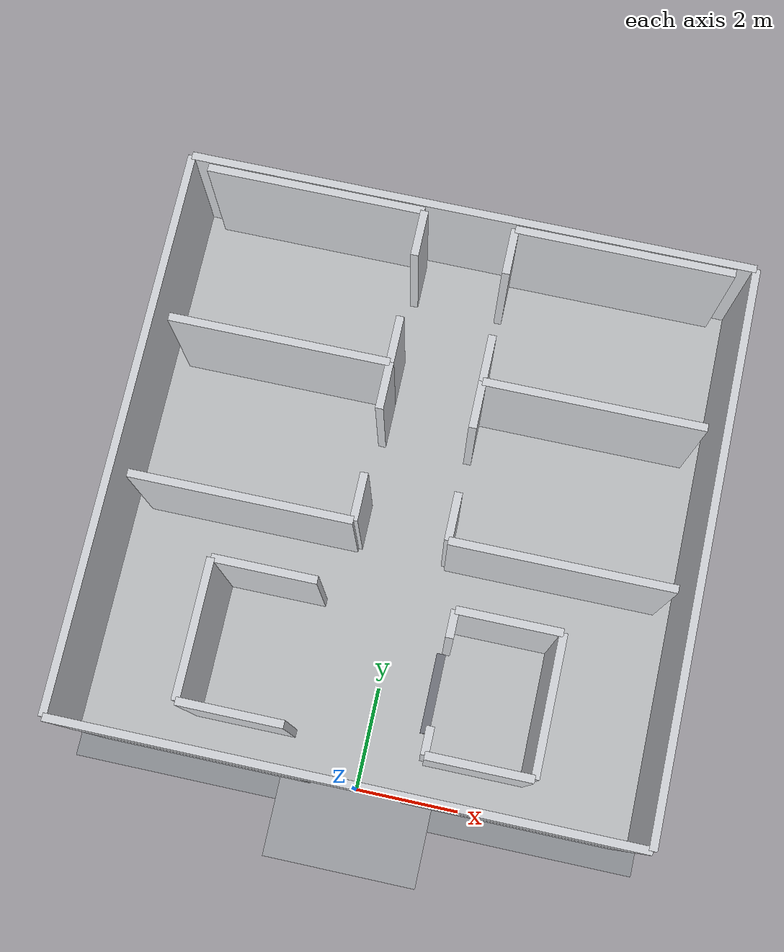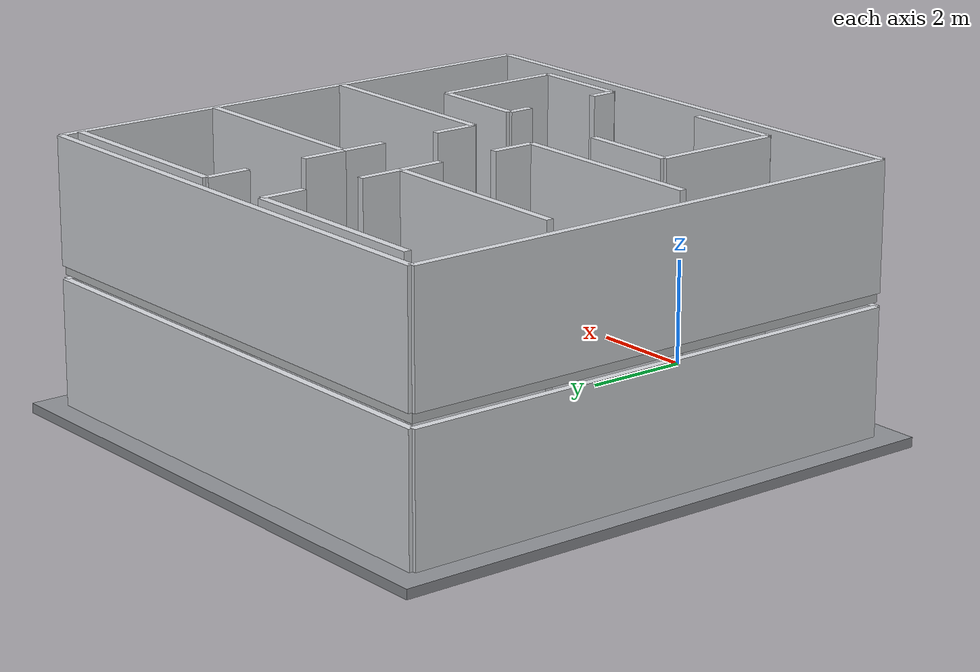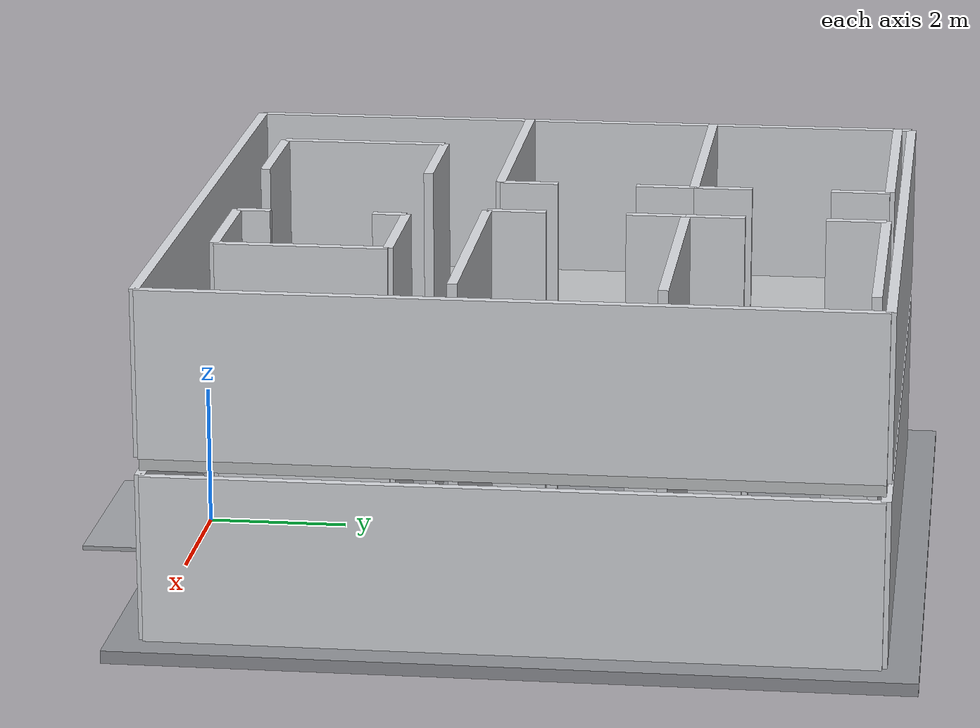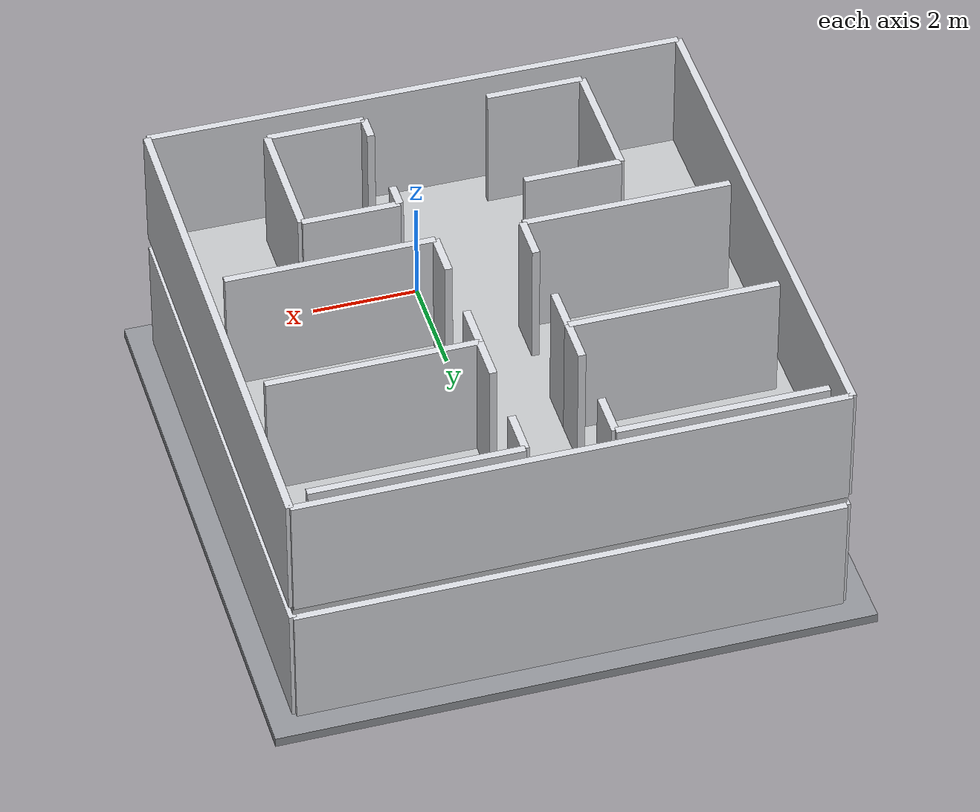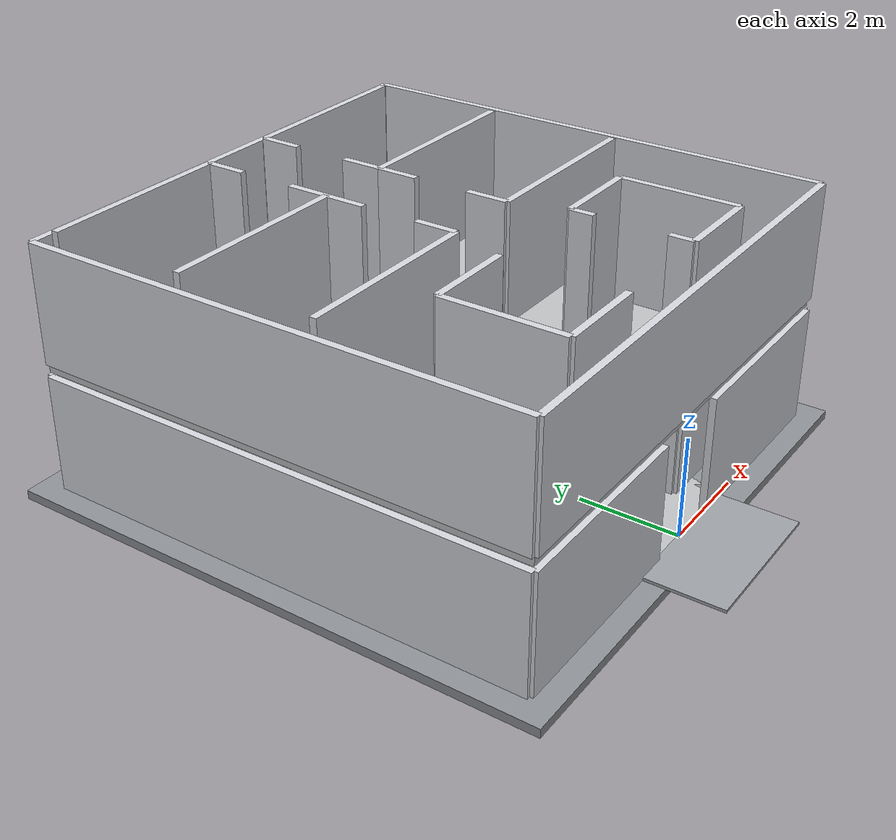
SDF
<?xml version="1.0" ?>
<sdf version="1.7">
  <model name="generated_lightweight_building">
    <static>true</static>
    <pose>0 0 0 0 0 0</pose>
    <link name="lightweight_foundation">
      <pose>0.0000 5.0000 -0.0900 0.0000 0.0000 0.0000</pose>
      <gravity>false</gravity>
      <collision name="lightweight_foundation_collision">
        <geometry>
          <box>
            <size>11.0000 11.0000 0.1800</size>
          </box>
        </geometry>
      </collision>
      <visual name="lightweight_foundation_visual">
        <geometry>
          <box>
            <size>11.0000 11.0000 0.1800</size>
          </box>
        </geometry>
        <material>
          <ambient>0.56 0.57 0.59 1</ambient>
          <diffuse>0.56 0.57 0.59 1</diffuse>
        </material>
      </visual>
    </link>
    <link name="lightweight_entrance_apron">
      <pose>0.0000 -0.8000 0.0300 0.0000 0.0000 0.0000</pose>
      <gravity>false</gravity>
      <collision name="lightweight_entrance_apron_collision">
        <geometry>
          <box>
            <size>3.0000 1.6000 0.0600</size>
          </box>
        </geometry>
      </collision>
      <visual name="lightweight_entrance_apron_visual">
        <geometry>
          <box>
            <size>3.0000 1.6000 0.0600</size>
          </box>
        </geometry>
        <material>
          <ambient>0.62 0.63 0.65 1</ambient>
          <diffuse>0.62 0.63 0.65 1</diffuse>
        </material>
      </visual>
    </link>
    <link name="lightweight_floor_plate_0">
      <pose>0.0000 5.0000 -0.0900 0.0000 0.0000 0.0000</pose>
      <gravity>false</gravity>
      <collision name="lightweight_floor_plate_0_collision">
        <geometry>
          <box>
            <size>10.0000 10.0000 0.1800</size>
          </box>
        </geometry>
      </collision>
      <visual name="lightweight_floor_plate_0_visual">
        <geometry>
          <box>
            <size>10.0000 10.0000 0.1800</size>
          </box>
        </geometry>
        <material>
          <ambient>0.75 0.76 0.77 1</ambient>
          <diffuse>0.75 0.76 0.77 1</diffuse>
        </material>
      </visual>
    </link>
    <link name="lightweight_west_wall_0">
      <pose>-5.0000 5.0000 1.1750 0.0000 0.0000 0.0000</pose>
      <gravity>false</gravity>
      <collision name="lightweight_west_wall_0_collision">
        <geometry>
          <box>
            <size>0.1400 10.0000 2.3500</size>
          </box>
        </geometry>
      </collision>
      <visual name="lightweight_west_wall_0_visual">
        <geometry>
          <box>
            <size>0.1400 10.0000 2.3500</size>
          </box>
        </geometry>
        <material>
          <ambient>0.84 0.85 0.87 1</ambient>
          <diffuse>0.84 0.85 0.87 1</diffuse>
        </material>
      </visual>
    </link>
    <link name="lightweight_east_wall_0">
      <pose>5.0000 5.0000 1.1750 0.0000 0.0000 0.0000</pose>
      <gravity>false</gravity>
      <collision name="lightweight_east_wall_0_collision">
        <geometry>
          <box>
            <size>0.1400 10.0000 2.3500</size>
          </box>
        </geometry>
      </collision>
      <visual name="lightweight_east_wall_0_visual">
        <geometry>
          <box>
            <size>0.1400 10.0000 2.3500</size>
          </box>
        </geometry>
        <material>
          <ambient>0.84 0.85 0.87 1</ambient>
          <diffuse>0.84 0.85 0.87 1</diffuse>
        </material>
      </visual>
    </link>
    <link name="lightweight_north_wall_0">
      <pose>0.0000 10.0000 1.1750 0.0000 0.0000 0.0000</pose>
      <gravity>false</gravity>
      <collision name="lightweight_north_wall_0_collision">
        <geometry>
          <box>
            <size>10.0000 0.1400 2.3500</size>
          </box>
        </geometry>
      </collision>
      <visual name="lightweight_north_wall_0_visual">
        <geometry>
          <box>
            <size>10.0000 0.1400 2.3500</size>
          </box>
        </geometry>
        <material>
          <ambient>0.84 0.85 0.87 1</ambient>
          <diffuse>0.84 0.85 0.87 1</diffuse>
        </material>
      </visual>
    </link>
    <link name="lightweight_south_wall_left_0">
      <pose>-2.9500 0.0000 1.1750 0.0000 0.0000 0.0000</pose>
      <gravity>false</gravity>
      <collision name="lightweight_south_wall_left_0_collision">
        <geometry>
          <box>
            <size>4.1000 0.1400 2.3500</size>
          </box>
        </geometry>
      </collision>
      <visual name="lightweight_south_wall_left_0_visual">
        <geometry>
          <box>
            <size>4.1000 0.1400 2.3500</size>
          </box>
        </geometry>
        <material>
          <ambient>0.84 0.85 0.87 1</ambient>
          <diffuse>0.84 0.85 0.87 1</diffuse>
        </material>
      </visual>
    </link>
    <link name="lightweight_south_wall_right_0">
      <pose>2.9500 0.0000 1.1750 0.0000 0.0000 0.0000</pose>
      <gravity>false</gravity>
      <collision name="lightweight_south_wall_right_0_collision">
        <geometry>
          <box>
            <size>4.1000 0.1400 2.3500</size>
          </box>
        </geometry>
      </collision>
      <visual name="lightweight_south_wall_right_0_visual">
        <geometry>
          <box>
            <size>4.1000 0.1400 2.3500</size>
          </box>
        </geometry>
        <material>
          <ambient>0.84 0.85 0.87 1</ambient>
          <diffuse>0.84 0.85 0.87 1</diffuse>
        </material>
      </visual>
    </link>
    <link name="lightweight_light_floor_0_room_0_corridor_wall_lower">
      <pose>-0.8000 4.6175 1.2250 0.0000 0.0000 0.0000</pose>
      <gravity>false</gravity>
      <collision name="lightweight_light_floor_0_room_0_corridor_wall_lower_collision">
        <geometry>
          <box>
            <size>0.1400 0.8350 2.4500</size>
          </box>
        </geometry>
      </collision>
      <visual name="lightweight_light_floor_0_room_0_corridor_wall_lower_visual">
        <geometry>
          <box>
            <size>0.1400 0.8350 2.4500</size>
          </box>
        </geometry>
        <material>
          <ambient>0.84 0.85 0.87 1</ambient>
          <diffuse>0.84 0.85 0.87 1</diffuse>
        </material>
      </visual>
    </link>
    <link name="lightweight_light_floor_0_room_0_corridor_wall_upper">
      <pose>-0.8000 6.5825 1.2250 0.0000 0.0000 0.0000</pose>
      <gravity>false</gravity>
      <collision name="lightweight_light_floor_0_room_0_corridor_wall_upper_collision">
        <geometry>
          <box>
            <size>0.1400 0.8350 2.4500</size>
          </box>
        </geometry>
      </collision>
      <visual name="lightweight_light_floor_0_room_0_corridor_wall_upper_visual">
        <geometry>
          <box>
            <size>0.1400 0.8350 2.4500</size>
          </box>
        </geometry>
        <material>
          <ambient>0.84 0.85 0.87 1</ambient>
          <diffuse>0.84 0.85 0.87 1</diffuse>
        </material>
      </visual>
    </link>
    <link name="lightweight_light_floor_0_room_0_south_wall">
      <pose>-2.7250 4.2000 1.2250 0.0000 0.0000 0.0000</pose>
      <gravity>false</gravity>
      <collision name="lightweight_light_floor_0_room_0_south_wall_collision">
        <geometry>
          <box>
            <size>3.8500 0.1400 2.4500</size>
          </box>
        </geometry>
      </collision>
      <visual name="lightweight_light_floor_0_room_0_south_wall_visual">
        <geometry>
          <box>
            <size>3.8500 0.1400 2.4500</size>
          </box>
        </geometry>
        <material>
          <ambient>0.84 0.85 0.87 1</ambient>
          <diffuse>0.84 0.85 0.87 1</diffuse>
        </material>
      </visual>
    </link>
    <link name="lightweight_light_floor_0_room_0_north_wall">
      <pose>-2.7250 7.0000 1.2250 0.0000 0.0000 0.0000</pose>
      <gravity>false</gravity>
      <collision name="lightweight_light_floor_0_room_0_north_wall_collision">
        <geometry>
          <box>
            <size>3.8500 0.1400 2.4500</size>
          </box>
        </geometry>
      </collision>
      <visual name="lightweight_light_floor_0_room_0_north_wall_visual">
        <geometry>
          <box>
            <size>3.8500 0.1400 2.4500</size>
          </box>
        </geometry>
        <material>
          <ambient>0.84 0.85 0.87 1</ambient>
          <diffuse>0.84 0.85 0.87 1</diffuse>
        </material>
      </visual>
    </link>
    <link name="lightweight_light_floor_0_room_1_corridor_wall_lower">
      <pose>0.8000 4.6175 1.2250 0.0000 0.0000 0.0000</pose>
      <gravity>false</gravity>
      <collision name="lightweight_light_floor_0_room_1_corridor_wall_lower_collision">
        <geometry>
          <box>
            <size>0.1400 0.8350 2.4500</size>
          </box>
        </geometry>
      </collision>
      <visual name="lightweight_light_floor_0_room_1_corridor_wall_lower_visual">
        <geometry>
          <box>
            <size>0.1400 0.8350 2.4500</size>
          </box>
        </geometry>
        <material>
          <ambient>0.84 0.85 0.87 1</ambient>
          <diffuse>0.84 0.85 0.87 1</diffuse>
        </material>
      </visual>
    </link>
    <link name="lightweight_light_floor_0_room_1_corridor_wall_upper">
      <pose>0.8000 6.5825 1.2250 0.0000 0.0000 0.0000</pose>
      <gravity>false</gravity>
      <collision name="lightweight_light_floor_0_room_1_corridor_wall_upper_collision">
        <geometry>
          <box>
            <size>0.1400 0.8350 2.4500</size>
          </box>
        </geometry>
      </collision>
      <visual name="lightweight_light_floor_0_room_1_corridor_wall_upper_visual">
        <geometry>
          <box>
            <size>0.1400 0.8350 2.4500</size>
          </box>
        </geometry>
        <material>
          <ambient>0.84 0.85 0.87 1</ambient>
          <diffuse>0.84 0.85 0.87 1</diffuse>
        </material>
      </visual>
    </link>
    <link name="lightweight_light_floor_0_room_1_south_wall">
      <pose>2.7250 4.2000 1.2250 0.0000 0.0000 0.0000</pose>
      <gravity>false</gravity>
      <collision name="lightweight_light_floor_0_room_1_south_wall_collision">
        <geometry>
          <box>
            <size>3.8500 0.1400 2.4500</size>
          </box>
        </geometry>
      </collision>
      <visual name="lightweight_light_floor_0_room_1_south_wall_visual">
        <geometry>
          <box>
            <size>3.8500 0.1400 2.4500</size>
          </box>
        </geometry>
        <material>
          <ambient>0.84 0.85 0.87 1</ambient>
          <diffuse>0.84 0.85 0.87 1</diffuse>
        </material>
      </visual>
    </link>
    <link name="lightweight_light_floor_0_room_1_north_wall">
      <pose>2.7250 7.0000 1.2250 0.0000 0.0000 0.0000</pose>
      <gravity>false</gravity>
      <collision name="lightweight_light_floor_0_room_1_north_wall_collision">
        <geometry>
          <box>
            <size>3.8500 0.1400 2.4500</size>
          </box>
        </geometry>
      </collision>
      <visual name="lightweight_light_floor_0_room_1_north_wall_visual">
        <geometry>
          <box>
            <size>3.8500 0.1400 2.4500</size>
          </box>
        </geometry>
        <material>
          <ambient>0.84 0.85 0.87 1</ambient>
          <diffuse>0.84 0.85 0.87 1</diffuse>
        </material>
      </visual>
    </link>
    <link name="lightweight_light_floor_0_room_2_corridor_wall_lower">
      <pose>-0.8000 7.4175 1.2250 0.0000 0.0000 0.0000</pose>
      <gravity>false</gravity>
      <collision name="lightweight_light_floor_0_room_2_corridor_wall_lower_collision">
        <geometry>
          <box>
            <size>0.1400 0.8350 2.4500</size>
          </box>
        </geometry>
      </collision>
      <visual name="lightweight_light_floor_0_room_2_corridor_wall_lower_visual">
        <geometry>
          <box>
            <size>0.1400 0.8350 2.4500</size>
          </box>
        </geometry>
        <material>
          <ambient>0.84 0.85 0.87 1</ambient>
          <diffuse>0.84 0.85 0.87 1</diffuse>
        </material>
      </visual>
    </link>
    <link name="lightweight_light_floor_0_room_2_corridor_wall_upper">
      <pose>-0.8000 9.3825 1.2250 0.0000 0.0000 0.0000</pose>
      <gravity>false</gravity>
      <collision name="lightweight_light_floor_0_room_2_corridor_wall_upper_collision">
        <geometry>
          <box>
            <size>0.1400 0.8350 2.4500</size>
          </box>
        </geometry>
      </collision>
      <visual name="lightweight_light_floor_0_room_2_corridor_wall_upper_visual">
        <geometry>
          <box>
            <size>0.1400 0.8350 2.4500</size>
          </box>
        </geometry>
        <material>
          <ambient>0.84 0.85 0.87 1</ambient>
          <diffuse>0.84 0.85 0.87 1</diffuse>
        </material>
      </visual>
    </link>
    <link name="lightweight_light_floor_0_room_2_south_wall">
      <pose>-2.7250 7.0000 1.2250 0.0000 0.0000 0.0000</pose>
      <gravity>false</gravity>
      <collision name="lightweight_light_floor_0_room_2_south_wall_collision">
        <geometry>
          <box>
            <size>3.8500 0.1400 2.4500</size>
          </box>
        </geometry>
      </collision>
      <visual name="lightweight_light_floor_0_room_2_south_wall_visual">
        <geometry>
          <box>
            <size>3.8500 0.1400 2.4500</size>
          </box>
        </geometry>
        <material>
          <ambient>0.84 0.85 0.87 1</ambient>
          <diffuse>0.84 0.85 0.87 1</diffuse>
        </material>
      </visual>
    </link>
    <link name="lightweight_light_floor_0_room_2_north_wall">
      <pose>-2.7250 9.8000 1.2250 0.0000 0.0000 0.0000</pose>
      <gravity>false</gravity>
      <collision name="lightweight_light_floor_0_room_2_north_wall_collision">
        <geometry>
          <box>
            <size>3.8500 0.1400 2.4500</size>
          </box>
        </geometry>
      </collision>
      <visual name="lightweight_light_floor_0_room_2_north_wall_visual">
        <geometry>
          <box>
            <size>3.8500 0.1400 2.4500</size>
          </box>
        </geometry>
        <material>
          <ambient>0.84 0.85 0.87 1</ambient>
          <diffuse>0.84 0.85 0.87 1</diffuse>
        </material>
      </visual>
    </link>
    <link name="lightweight_light_floor_0_room_3_corridor_wall_lower">
      <pose>0.8000 7.4175 1.2250 0.0000 0.0000 0.0000</pose>
      <gravity>false</gravity>
      <collision name="lightweight_light_floor_0_room_3_corridor_wall_lower_collision">
        <geometry>
          <box>
            <size>0.1400 0.8350 2.4500</size>
          </box>
        </geometry>
      </collision>
      <visual name="lightweight_light_floor_0_room_3_corridor_wall_lower_visual">
        <geometry>
          <box>
            <size>0.1400 0.8350 2.4500</size>
          </box>
        </geometry>
        <material>
          <ambient>0.84 0.85 0.87 1</ambient>
          <diffuse>0.84 0.85 0.87 1</diffuse>
        </material>
      </visual>
    </link>
    <link name="lightweight_light_floor_0_room_3_corridor_wall_upper">
      <pose>0.8000 9.3825 1.2250 0.0000 0.0000 0.0000</pose>
      <gravity>false</gravity>
      <collision name="lightweight_light_floor_0_room_3_corridor_wall_upper_collision">
        <geometry>
          <box>
            <size>0.1400 0.8350 2.4500</size>
          </box>
        </geometry>
      </collision>
      <visual name="lightweight_light_floor_0_room_3_corridor_wall_upper_visual">
        <geometry>
          <box>
            <size>0.1400 0.8350 2.4500</size>
          </box>
        </geometry>
        <material>
          <ambient>0.84 0.85 0.87 1</ambient>
          <diffuse>0.84 0.85 0.87 1</diffuse>
        </material>
      </visual>
    </link>
    <link name="lightweight_light_floor_0_room_3_south_wall">
      <pose>2.7250 7.0000 1.2250 0.0000 0.0000 0.0000</pose>
      <gravity>false</gravity>
      <collision name="lightweight_light_floor_0_room_3_south_wall_collision">
        <geometry>
          <box>
            <size>3.8500 0.1400 2.4500</size>
          </box>
        </geometry>
      </collision>
      <visual name="lightweight_light_floor_0_room_3_south_wall_visual">
        <geometry>
          <box>
            <size>3.8500 0.1400 2.4500</size>
          </box>
        </geometry>
        <material>
          <ambient>0.84 0.85 0.87 1</ambient>
          <diffuse>0.84 0.85 0.87 1</diffuse>
        </material>
      </visual>
    </link>
    <link name="lightweight_light_floor_0_room_3_north_wall">
      <pose>2.7250 9.8000 1.2250 0.0000 0.0000 0.0000</pose>
      <gravity>false</gravity>
      <collision name="lightweight_light_floor_0_room_3_north_wall_collision">
        <geometry>
          <box>
            <size>3.8500 0.1400 2.4500</size>
          </box>
        </geometry>
      </collision>
      <visual name="lightweight_light_floor_0_room_3_north_wall_visual">
        <geometry>
          <box>
            <size>3.8500 0.1400 2.4500</size>
          </box>
        </geometry>
        <material>
          <ambient>0.84 0.85 0.87 1</ambient>
          <diffuse>0.84 0.85 0.87 1</diffuse>
        </material>
      </visual>
    </link>
    <link name="lightweight_elevator_core_east_0">
      <pose>2.9500 1.9000 1.2250 0.0000 0.0000 0.0000</pose>
      <gravity>false</gravity>
      <collision name="lightweight_elevator_core_east_0_collision">
        <geometry>
          <box>
            <size>0.1400 2.4000 2.4500</size>
          </box>
        </geometry>
      </collision>
      <visual name="lightweight_elevator_core_east_0_visual">
        <geometry>
          <box>
            <size>0.1400 2.4000 2.4500</size>
          </box>
        </geometry>
        <material>
          <ambient>0.84 0.85 0.87 1</ambient>
          <diffuse>0.84 0.85 0.87 1</diffuse>
        </material>
      </visual>
    </link>
    <link name="lightweight_elevator_core_south_0">
      <pose>2.0500 0.7000 1.2250 0.0000 0.0000 0.0000</pose>
      <gravity>false</gravity>
      <collision name="lightweight_elevator_core_south_0_collision">
        <geometry>
          <box>
            <size>1.8000 0.1400 2.4500</size>
          </box>
        </geometry>
      </collision>
      <visual name="lightweight_elevator_core_south_0_visual">
        <geometry>
          <box>
            <size>1.8000 0.1400 2.4500</size>
          </box>
        </geometry>
        <material>
          <ambient>0.84 0.85 0.87 1</ambient>
          <diffuse>0.84 0.85 0.87 1</diffuse>
        </material>
      </visual>
    </link>
    <link name="lightweight_elevator_core_north_0">
      <pose>2.0500 3.1000 1.2250 0.0000 0.0000 0.0000</pose>
      <gravity>false</gravity>
      <collision name="lightweight_elevator_core_north_0_collision">
        <geometry>
          <box>
            <size>1.8000 0.1400 2.4500</size>
          </box>
        </geometry>
      </collision>
      <visual name="lightweight_elevator_core_north_0_visual">
        <geometry>
          <box>
            <size>1.8000 0.1400 2.4500</size>
          </box>
        </geometry>
        <material>
          <ambient>0.84 0.85 0.87 1</ambient>
          <diffuse>0.84 0.85 0.87 1</diffuse>
        </material>
      </visual>
    </link>
    <link name="lightweight_elevator_core_west_lower_0">
      <pose>1.1500 0.9375 1.2250 0.0000 0.0000 0.0000</pose>
      <gravity>false</gravity>
      <collision name="lightweight_elevator_core_west_lower_0_collision">
        <geometry>
          <box>
            <size>0.1400 0.4750 2.4500</size>
          </box>
        </geometry>
      </collision>
      <visual name="lightweight_elevator_core_west_lower_0_visual">
        <geometry>
          <box>
            <size>0.1400 0.4750 2.4500</size>
          </box>
        </geometry>
        <material>
          <ambient>0.84 0.85 0.87 1</ambient>
          <diffuse>0.84 0.85 0.87 1</diffuse>
        </material>
      </visual>
    </link>
    <link name="lightweight_elevator_core_west_upper_0">
      <pose>1.1500 2.8625 1.2250 0.0000 0.0000 0.0000</pose>
      <gravity>false</gravity>
      <collision name="lightweight_elevator_core_west_upper_0_collision">
        <geometry>
          <box>
            <size>0.1400 0.4750 2.4500</size>
          </box>
        </geometry>
      </collision>
      <visual name="lightweight_elevator_core_west_upper_0_visual">
        <geometry>
          <box>
            <size>0.1400 0.4750 2.4500</size>
          </box>
        </geometry>
        <material>
          <ambient>0.84 0.85 0.87 1</ambient>
          <diffuse>0.84 0.85 0.87 1</diffuse>
        </material>
      </visual>
    </link>
    <link name="lightweight_stair_core_west_0">
      <pose>-2.9500 1.9000 1.2250 0.0000 0.0000 0.0000</pose>
      <gravity>false</gravity>
      <collision name="lightweight_stair_core_west_0_collision">
        <geometry>
          <box>
            <size>0.1400 2.4000 2.4500</size>
          </box>
        </geometry>
      </collision>
      <visual name="lightweight_stair_core_west_0_visual">
        <geometry>
          <box>
            <size>0.1400 2.4000 2.4500</size>
          </box>
        </geometry>
        <material>
          <ambient>0.84 0.85 0.87 1</ambient>
          <diffuse>0.84 0.85 0.87 1</diffuse>
        </material>
      </visual>
    </link>
    <link name="lightweight_stair_core_south_0">
      <pose>-2.0500 0.7000 1.2250 0.0000 0.0000 0.0000</pose>
      <gravity>false</gravity>
      <collision name="lightweight_stair_core_south_0_collision">
        <geometry>
          <box>
            <size>1.8000 0.1400 2.4500</size>
          </box>
        </geometry>
      </collision>
      <visual name="lightweight_stair_core_south_0_visual">
        <geometry>
          <box>
            <size>1.8000 0.1400 2.4500</size>
          </box>
        </geometry>
        <material>
          <ambient>0.84 0.85 0.87 1</ambient>
          <diffuse>0.84 0.85 0.87 1</diffuse>
        </material>
      </visual>
    </link>
    <link name="lightweight_stair_core_north_0">
      <pose>-2.0500 3.1000 1.2250 0.0000 0.0000 0.0000</pose>
      <gravity>false</gravity>
      <collision name="lightweight_stair_core_north_0_collision">
        <geometry>
          <box>
            <size>1.8000 0.1400 2.4500</size>
          </box>
        </geometry>
      </collision>
      <visual name="lightweight_stair_core_north_0_visual">
        <geometry>
          <box>
            <size>1.8000 0.1400 2.4500</size>
          </box>
        </geometry>
        <material>
          <ambient>0.84 0.85 0.87 1</ambient>
          <diffuse>0.84 0.85 0.87 1</diffuse>
        </material>
      </visual>
    </link>
    <link name="lightweight_elevator_threshold_0">
      <pose>1.0700 1.9000 0.0250 0.0000 0.0000 0.0000</pose>
      <gravity>false</gravity>
      <collision name="lightweight_elevator_threshold_0_collision">
        <geometry>
          <box>
            <size>0.1600 1.4500 0.0500</size>
          </box>
        </geometry>
      </collision>
      <visual name="lightweight_elevator_threshold_0_visual">
        <geometry>
          <box>
            <size>0.1600 1.4500 0.0500</size>
          </box>
        </geometry>
        <material>
          <ambient>0.45 0.46 0.49 1</ambient>
          <diffuse>0.45 0.46 0.49 1</diffuse>
        </material>
      </visual>
    </link>
    <link name="lightweight_floor_plate_1">
      <pose>0.0000 5.0000 2.5100 0.0000 0.0000 0.0000</pose>
      <gravity>false</gravity>
      <collision name="lightweight_floor_plate_1_collision">
        <geometry>
          <box>
            <size>10.0000 10.0000 0.1800</size>
          </box>
        </geometry>
      </collision>
      <visual name="lightweight_floor_plate_1_visual">
        <geometry>
          <box>
            <size>10.0000 10.0000 0.1800</size>
          </box>
        </geometry>
        <material>
          <ambient>0.75 0.76 0.77 1</ambient>
          <diffuse>0.75 0.76 0.77 1</diffuse>
        </material>
      </visual>
    </link>
    <link name="lightweight_west_wall_1">
      <pose>-5.0000 5.0000 3.7750 0.0000 0.0000 0.0000</pose>
      <gravity>false</gravity>
      <collision name="lightweight_west_wall_1_collision">
        <geometry>
          <box>
            <size>0.1400 10.0000 2.3500</size>
          </box>
        </geometry>
      </collision>
      <visual name="lightweight_west_wall_1_visual">
        <geometry>
          <box>
            <size>0.1400 10.0000 2.3500</size>
          </box>
        </geometry>
        <material>
          <ambient>0.84 0.85 0.87 1</ambient>
          <diffuse>0.84 0.85 0.87 1</diffuse>
        </material>
      </visual>
    </link>
    <link name="lightweight_east_wall_1">
      <pose>5.0000 5.0000 3.7750 0.0000 0.0000 0.0000</pose>
      <gravity>false</gravity>
      <collision name="lightweight_east_wall_1_collision">
        <geometry>
          <box>
            <size>0.1400 10.0000 2.3500</size>
          </box>
        </geometry>
      </collision>
      <visual name="lightweight_east_wall_1_visual">
        <geometry>
          <box>
            <size>0.1400 10.0000 2.3500</size>
          </box>
        </geometry>
        <material>
          <ambient>0.84 0.85 0.87 1</ambient>
          <diffuse>0.84 0.85 0.87 1</diffuse>
        </material>
      </visual>
    </link>
    <link name="lightweight_north_wall_1">
      <pose>0.0000 10.0000 3.7750 0.0000 0.0000 0.0000</pose>
      <gravity>false</gravity>
      <collision name="lightweight_north_wall_1_collision">
        <geometry>
          <box>
            <size>10.0000 0.1400 2.3500</size>
          </box>
        </geometry>
      </collision>
      <visual name="lightweight_north_wall_1_visual">
        <geometry>
          <box>
            <size>10.0000 0.1400 2.3500</size>
          </box>
        </geometry>
        <material>
          <ambient>0.84 0.85 0.87 1</ambient>
          <diffuse>0.84 0.85 0.87 1</diffuse>
        </material>
      </visual>
    </link>
    <link name="lightweight_south_wall_1">
      <pose>0.0000 0.0000 3.7750 0.0000 0.0000 0.0000</pose>
      <gravity>false</gravity>
      <collision name="lightweight_south_wall_1_collision">
        <geometry>
          <box>
            <size>10.0000 0.1400 2.3500</size>
          </box>
        </geometry>
      </collision>
      <visual name="lightweight_south_wall_1_visual">
        <geometry>
          <box>
            <size>10.0000 0.1400 2.3500</size>
          </box>
        </geometry>
        <material>
          <ambient>0.84 0.85 0.87 1</ambient>
          <diffuse>0.84 0.85 0.87 1</diffuse>
        </material>
      </visual>
    </link>
    <link name="lightweight_light_floor_1_room_0_corridor_wall_lower">
      <pose>-0.8000 4.6175 3.8250 0.0000 0.0000 0.0000</pose>
      <gravity>false</gravity>
      <collision name="lightweight_light_floor_1_room_0_corridor_wall_lower_collision">
        <geometry>
          <box>
            <size>0.1400 0.8350 2.4500</size>
          </box>
        </geometry>
      </collision>
      <visual name="lightweight_light_floor_1_room_0_corridor_wall_lower_visual">
        <geometry>
          <box>
            <size>0.1400 0.8350 2.4500</size>
          </box>
        </geometry>
        <material>
          <ambient>0.84 0.85 0.87 1</ambient>
          <diffuse>0.84 0.85 0.87 1</diffuse>
        </material>
      </visual>
    </link>
    <link name="lightweight_light_floor_1_room_0_corridor_wall_upper">
      <pose>-0.8000 6.5825 3.8250 0.0000 0.0000 0.0000</pose>
      <gravity>false</gravity>
      <collision name="lightweight_light_floor_1_room_0_corridor_wall_upper_collision">
        <geometry>
          <box>
            <size>0.1400 0.8350 2.4500</size>
          </box>
        </geometry>
      </collision>
      <visual name="lightweight_light_floor_1_room_0_corridor_wall_upper_visual">
        <geometry>
          <box>
            <size>0.1400 0.8350 2.4500</size>
          </box>
        </geometry>
        <material>
          <ambient>0.84 0.85 0.87 1</ambient>
          <diffuse>0.84 0.85 0.87 1</diffuse>
        </material>
      </visual>
    </link>
    <link name="lightweight_light_floor_1_room_0_south_wall">
      <pose>-2.7250 4.2000 3.8250 0.0000 0.0000 0.0000</pose>
      <gravity>false</gravity>
      <collision name="lightweight_light_floor_1_room_0_south_wall_collision">
        <geometry>
          <box>
            <size>3.8500 0.1400 2.4500</size>
          </box>
        </geometry>
      </collision>
      <visual name="lightweight_light_floor_1_room_0_south_wall_visual">
        <geometry>
          <box>
            <size>3.8500 0.1400 2.4500</size>
          </box>
        </geometry>
        <material>
          <ambient>0.84 0.85 0.87 1</ambient>
          <diffuse>0.84 0.85 0.87 1</diffuse>
        </material>
      </visual>
    </link>
    <link name="lightweight_light_floor_1_room_0_north_wall">
      <pose>-2.7250 7.0000 3.8250 0.0000 0.0000 0.0000</pose>
      <gravity>false</gravity>
      <collision name="lightweight_light_floor_1_room_0_north_wall_collision">
        <geometry>
          <box>
            <size>3.8500 0.1400 2.4500</size>
          </box>
        </geometry>
      </collision>
      <visual name="lightweight_light_floor_1_room_0_north_wall_visual">
        <geometry>
          <box>
            <size>3.8500 0.1400 2.4500</size>
          </box>
        </geometry>
        <material>
          <ambient>0.84 0.85 0.87 1</ambient>
          <diffuse>0.84 0.85 0.87 1</diffuse>
        </material>
      </visual>
    </link>
    <link name="lightweight_light_floor_1_room_1_corridor_wall_lower">
      <pose>0.8000 4.6175 3.8250 0.0000 0.0000 0.0000</pose>
      <gravity>false</gravity>
      <collision name="lightweight_light_floor_1_room_1_corridor_wall_lower_collision">
        <geometry>
          <box>
            <size>0.1400 0.8350 2.4500</size>
          </box>
        </geometry>
      </collision>
      <visual name="lightweight_light_floor_1_room_1_corridor_wall_lower_visual">
        <geometry>
          <box>
            <size>0.1400 0.8350 2.4500</size>
          </box>
        </geometry>
        <material>
          <ambient>0.84 0.85 0.87 1</ambient>
          <diffuse>0.84 0.85 0.87 1</diffuse>
        </material>
      </visual>
    </link>
    <link name="lightweight_light_floor_1_room_1_corridor_wall_upper">
      <pose>0.8000 6.5825 3.8250 0.0000 0.0000 0.0000</pose>
      <gravity>false</gravity>
      <collision name="lightweight_light_floor_1_room_1_corridor_wall_upper_collision">
        <geometry>
          <box>
            <size>0.1400 0.8350 2.4500</size>
          </box>
        </geometry>
      </collision>
      <visual name="lightweight_light_floor_1_room_1_corridor_wall_upper_visual">
        <geometry>
          <box>
            <size>0.1400 0.8350 2.4500</size>
          </box>
        </geometry>
        <material>
          <ambient>0.84 0.85 0.87 1</ambient>
          <diffuse>0.84 0.85 0.87 1</diffuse>
        </material>
      </visual>
    </link>
    <link name="lightweight_light_floor_1_room_1_south_wall">
      <pose>2.7250 4.2000 3.8250 0.0000 0.0000 0.0000</pose>
      <gravity>false</gravity>
      <collision name="lightweight_light_floor_1_room_1_south_wall_collision">
        <geometry>
          <box>
            <size>3.8500 0.1400 2.4500</size>
          </box>
        </geometry>
      </collision>
      <visual name="lightweight_light_floor_1_room_1_south_wall_visual">
        <geometry>
          <box>
            <size>3.8500 0.1400 2.4500</size>
          </box>
        </geometry>
        <material>
          <ambient>0.84 0.85 0.87 1</ambient>
          <diffuse>0.84 0.85 0.87 1</diffuse>
        </material>
      </visual>
    </link>
    <link name="lightweight_light_floor_1_room_1_north_wall">
      <pose>2.7250 7.0000 3.8250 0.0000 0.0000 0.0000</pose>
      <gravity>false</gravity>
      <collision name="lightweight_light_floor_1_room_1_north_wall_collision">
        <geometry>
          <box>
            <size>3.8500 0.1400 2.4500</size>
          </box>
        </geometry>
      </collision>
      <visual name="lightweight_light_floor_1_room_1_north_wall_visual">
        <geometry>
          <box>
            <size>3.8500 0.1400 2.4500</size>
          </box>
        </geometry>
        <material>
          <ambient>0.84 0.85 0.87 1</ambient>
          <diffuse>0.84 0.85 0.87 1</diffuse>
        </material>
      </visual>
    </link>
    <link name="lightweight_light_floor_1_room_2_corridor_wall_lower">
      <pose>-0.8000 7.4175 3.8250 0.0000 0.0000 0.0000</pose>
      <gravity>false</gravity>
      <collision name="lightweight_light_floor_1_room_2_corridor_wall_lower_collision">
        <geometry>
          <box>
            <size>0.1400 0.8350 2.4500</size>
          </box>
        </geometry>
      </collision>
      <visual name="lightweight_light_floor_1_room_2_corridor_wall_lower_visual">
        <geometry>
          <box>
            <size>0.1400 0.8350 2.4500</size>
          </box>
        </geometry>
        <material>
          <ambient>0.84 0.85 0.87 1</ambient>
          <diffuse>0.84 0.85 0.87 1</diffuse>
        </material>
      </visual>
    </link>
    <link name="lightweight_light_floor_1_room_2_corridor_wall_upper">
      <pose>-0.8000 9.3825 3.8250 0.0000 0.0000 0.0000</pose>
      <gravity>false</gravity>
      <collision name="lightweight_light_floor_1_room_2_corridor_wall_upper_collision">
        <geometry>
          <box>
            <size>0.1400 0.8350 2.4500</size>
          </box>
        </geometry>
      </collision>
      <visual name="lightweight_light_floor_1_room_2_corridor_wall_upper_visual">
        <geometry>
          <box>
            <size>0.1400 0.8350 2.4500</size>
          </box>
        </geometry>
        <material>
          <ambient>0.84 0.85 0.87 1</ambient>
          <diffuse>0.84 0.85 0.87 1</diffuse>
        </material>
      </visual>
    </link>
    <link name="lightweight_light_floor_1_room_2_south_wall">
      <pose>-2.7250 7.0000 3.8250 0.0000 0.0000 0.0000</pose>
      <gravity>false</gravity>
      <collision name="lightweight_light_floor_1_room_2_south_wall_collision">
        <geometry>
          <box>
            <size>3.8500 0.1400 2.4500</size>
          </box>
        </geometry>
      </collision>
      <visual name="lightweight_light_floor_1_room_2_south_wall_visual">
        <geometry>
          <box>
            <size>3.8500 0.1400 2.4500</size>
          </box>
        </geometry>
        <material>
          <ambient>0.84 0.85 0.87 1</ambient>
          <diffuse>0.84 0.85 0.87 1</diffuse>
        </material>
      </visual>
    </link>
    <link name="lightweight_light_floor_1_room_2_north_wall">
      <pose>-2.7250 9.8000 3.8250 0.0000 0.0000 0.0000</pose>
      <gravity>false</gravity>
      <collision name="lightweight_light_floor_1_room_2_north_wall_collision">
        <geometry>
          <box>
            <size>3.8500 0.1400 2.4500</size>
          </box>
        </geometry>
      </collision>
      <visual name="lightweight_light_floor_1_room_2_north_wall_visual">
        <geometry>
          <box>
            <size>3.8500 0.1400 2.4500</size>
          </box>
        </geometry>
        <material>
          <ambient>0.84 0.85 0.87 1</ambient>
          <diffuse>0.84 0.85 0.87 1</diffuse>
        </material>
      </visual>
    </link>
    <link name="lightweight_light_floor_1_room_3_corridor_wall_lower">
      <pose>0.8000 7.4175 3.8250 0.0000 0.0000 0.0000</pose>
      <gravity>false</gravity>
      <collision name="lightweight_light_floor_1_room_3_corridor_wall_lower_collision">
        <geometry>
          <box>
            <size>0.1400 0.8350 2.4500</size>
          </box>
        </geometry>
      </collision>
      <visual name="lightweight_light_floor_1_room_3_corridor_wall_lower_visual">
        <geometry>
          <box>
            <size>0.1400 0.8350 2.4500</size>
          </box>
        </geometry>
        <material>
          <ambient>0.84 0.85 0.87 1</ambient>
          <diffuse>0.84 0.85 0.87 1</diffuse>
        </material>
      </visual>
    </link>
    <link name="lightweight_light_floor_1_room_3_corridor_wall_upper">
      <pose>0.8000 9.3825 3.8250 0.0000 0.0000 0.0000</pose>
      <gravity>false</gravity>
      <collision name="lightweight_light_floor_1_room_3_corridor_wall_upper_collision">
        <geometry>
          <box>
            <size>0.1400 0.8350 2.4500</size>
          </box>
        </geometry>
      </collision>
      <visual name="lightweight_light_floor_1_room_3_corridor_wall_upper_visual">
        <geometry>
          <box>
            <size>0.1400 0.8350 2.4500</size>
          </box>
        </geometry>
        <material>
          <ambient>0.84 0.85 0.87 1</ambient>
          <diffuse>0.84 0.85 0.87 1</diffuse>
        </material>
      </visual>
    </link>
    <link name="lightweight_light_floor_1_room_3_south_wall">
      <pose>2.7250 7.0000 3.8250 0.0000 0.0000 0.0000</pose>
      <gravity>false</gravity>
      <collision name="lightweight_light_floor_1_room_3_south_wall_collision">
        <geometry>
          <box>
            <size>3.8500 0.1400 2.4500</size>
          </box>
        </geometry>
      </collision>
      <visual name="lightweight_light_floor_1_room_3_south_wall_visual">
        <geometry>
          <box>
            <size>3.8500 0.1400 2.4500</size>
          </box>
        </geometry>
        <material>
          <ambient>0.84 0.85 0.87 1</ambient>
          <diffuse>0.84 0.85 0.87 1</diffuse>
        </material>
      </visual>
    </link>
    <link name="lightweight_light_floor_1_room_3_north_wall">
      <pose>2.7250 9.8000 3.8250 0.0000 0.0000 0.0000</pose>
      <gravity>false</gravity>
      <collision name="lightweight_light_floor_1_room_3_north_wall_collision">
        <geometry>
          <box>
            <size>3.8500 0.1400 2.4500</size>
          </box>
        </geometry>
      </collision>
      <visual name="lightweight_light_floor_1_room_3_north_wall_visual">
        <geometry>
          <box>
            <size>3.8500 0.1400 2.4500</size>
          </box>
        </geometry>
        <material>
          <ambient>0.84 0.85 0.87 1</ambient>
          <diffuse>0.84 0.85 0.87 1</diffuse>
        </material>
      </visual>
    </link>
    <link name="lightweight_elevator_core_east_1">
      <pose>2.9500 1.9000 3.8250 0.0000 0.0000 0.0000</pose>
      <gravity>false</gravity>
      <collision name="lightweight_elevator_core_east_1_collision">
        <geometry>
          <box>
            <size>0.1400 2.4000 2.4500</size>
          </box>
        </geometry>
      </collision>
      <visual name="lightweight_elevator_core_east_1_visual">
        <geometry>
          <box>
            <size>0.1400 2.4000 2.4500</size>
          </box>
        </geometry>
        <material>
          <ambient>0.84 0.85 0.87 1</ambient>
          <diffuse>0.84 0.85 0.87 1</diffuse>
        </material>
      </visual>
    </link>
    <link name="lightweight_elevator_core_south_1">
      <pose>2.0500 0.7000 3.8250 0.0000 0.0000 0.0000</pose>
      <gravity>false</gravity>
      <collision name="lightweight_elevator_core_south_1_collision">
        <geometry>
          <box>
            <size>1.8000 0.1400 2.4500</size>
          </box>
        </geometry>
      </collision>
      <visual name="lightweight_elevator_core_south_1_visual">
        <geometry>
          <box>
            <size>1.8000 0.1400 2.4500</size>
          </box>
        </geometry>
        <material>
          <ambient>0.84 0.85 0.87 1</ambient>
          <diffuse>0.84 0.85 0.87 1</diffuse>
        </material>
      </visual>
    </link>
    <link name="lightweight_elevator_core_north_1">
      <pose>2.0500 3.1000 3.8250 0.0000 0.0000 0.0000</pose>
      <gravity>false</gravity>
      <collision name="lightweight_elevator_core_north_1_collision">
        <geometry>
          <box>
            <size>1.8000 0.1400 2.4500</size>
          </box>
        </geometry>
      </collision>
      <visual name="lightweight_elevator_core_north_1_visual">
        <geometry>
          <box>
            <size>1.8000 0.1400 2.4500</size>
          </box>
        </geometry>
        <material>
          <ambient>0.84 0.85 0.87 1</ambient>
          <diffuse>0.84 0.85 0.87 1</diffuse>
        </material>
      </visual>
    </link>
    <link name="lightweight_elevator_core_west_lower_1">
      <pose>1.1500 0.9375 3.8250 0.0000 0.0000 0.0000</pose>
      <gravity>false</gravity>
      <collision name="lightweight_elevator_core_west_lower_1_collision">
        <geometry>
          <box>
            <size>0.1400 0.4750 2.4500</size>
          </box>
        </geometry>
      </collision>
      <visual name="lightweight_elevator_core_west_lower_1_visual">
        <geometry>
          <box>
            <size>0.1400 0.4750 2.4500</size>
          </box>
        </geometry>
        <material>
          <ambient>0.84 0.85 0.87 1</ambient>
          <diffuse>0.84 0.85 0.87 1</diffuse>
        </material>
      </visual>
    </link>
    <link name="lightweight_elevator_core_west_upper_1">
      <pose>1.1500 2.8625 3.8250 0.0000 0.0000 0.0000</pose>
      <gravity>false</gravity>
      <collision name="lightweight_elevator_core_west_upper_1_collision">
        <geometry>
          <box>
            <size>0.1400 0.4750 2.4500</size>
          </box>
        </geometry>
      </collision>
      <visual name="lightweight_elevator_core_west_upper_1_visual">
        <geometry>
          <box>
            <size>0.1400 0.4750 2.4500</size>
          </box>
        </geometry>
        <material>
          <ambient>0.84 0.85 0.87 1</ambient>
          <diffuse>0.84 0.85 0.87 1</diffuse>
        </material>
      </visual>
    </link>
    <link name="lightweight_stair_core_west_1">
      <pose>-2.9500 1.9000 3.8250 0.0000 0.0000 0.0000</pose>
      <gravity>false</gravity>
      <collision name="lightweight_stair_core_west_1_collision">
        <geometry>
          <box>
            <size>0.1400 2.4000 2.4500</size>
          </box>
        </geometry>
      </collision>
      <visual name="lightweight_stair_core_west_1_visual">
        <geometry>
          <box>
            <size>0.1400 2.4000 2.4500</size>
          </box>
        </geometry>
        <material>
          <ambient>0.84 0.85 0.87 1</ambient>
          <diffuse>0.84 0.85 0.87 1</diffuse>
        </material>
      </visual>
    </link>
    <link name="lightweight_stair_core_south_1">
      <pose>-2.0500 0.7000 3.8250 0.0000 0.0000 0.0000</pose>
      <gravity>false</gravity>
      <collision name="lightweight_stair_core_south_1_collision">
        <geometry>
          <box>
            <size>1.8000 0.1400 2.4500</size>
          </box>
        </geometry>
      </collision>
      <visual name="lightweight_stair_core_south_1_visual">
        <geometry>
          <box>
            <size>1.8000 0.1400 2.4500</size>
          </box>
        </geometry>
        <material>
          <ambient>0.84 0.85 0.87 1</ambient>
          <diffuse>0.84 0.85 0.87 1</diffuse>
        </material>
      </visual>
    </link>
    <link name="lightweight_stair_core_north_1">
      <pose>-2.0500 3.1000 3.8250 0.0000 0.0000 0.0000</pose>
      <gravity>false</gravity>
      <collision name="lightweight_stair_core_north_1_collision">
        <geometry>
          <box>
            <size>1.8000 0.1400 2.4500</size>
          </box>
        </geometry>
      </collision>
      <visual name="lightweight_stair_core_north_1_visual">
        <geometry>
          <box>
            <size>1.8000 0.1400 2.4500</size>
          </box>
        </geometry>
        <material>
          <ambient>0.84 0.85 0.87 1</ambient>
          <diffuse>0.84 0.85 0.87 1</diffuse>
        </material>
      </visual>
    </link>
    <link name="lightweight_elevator_threshold_1">
      <pose>1.0700 1.9000 2.6250 0.0000 0.0000 0.0000</pose>
      <gravity>false</gravity>
      <collision name="lightweight_elevator_threshold_1_collision">
        <geometry>
          <box>
            <size>0.1600 1.4500 0.0500</size>
          </box>
        </geometry>
      </collision>
      <visual name="lightweight_elevator_threshold_1_visual">
        <geometry>
          <box>
            <size>0.1600 1.4500 0.0500</size>
          </box>
        </geometry>
        <material>
          <ambient>0.45 0.46 0.49 1</ambient>
          <diffuse>0.45 0.46 0.49 1</diffuse>
        </material>
      </visual>
    </link>
    <link name="lightweight_stair_ramp_0">
      <pose>-2.0500 1.9000 1.3000 0.0000 -0.3600 0.0000</pose>
      <gravity>false</gravity>
      <collision name="lightweight_stair_ramp_0_collision">
        <geometry>
          <box>
            <size>1.5500 1.9000 0.1600</size>
          </box>
        </geometry>
      </collision>
      <visual name="lightweight_stair_ramp_0_visual">
        <geometry>
          <box>
            <size>1.5500 1.9000 0.1600</size>
          </box>
        </geometry>
        <material>
          <ambient>0.64 0.65 0.67 1</ambient>
          <diffuse>0.64 0.65 0.67 1</diffuse>
        </material>
      </visual>
    </link>
  </model>
</sdf>
